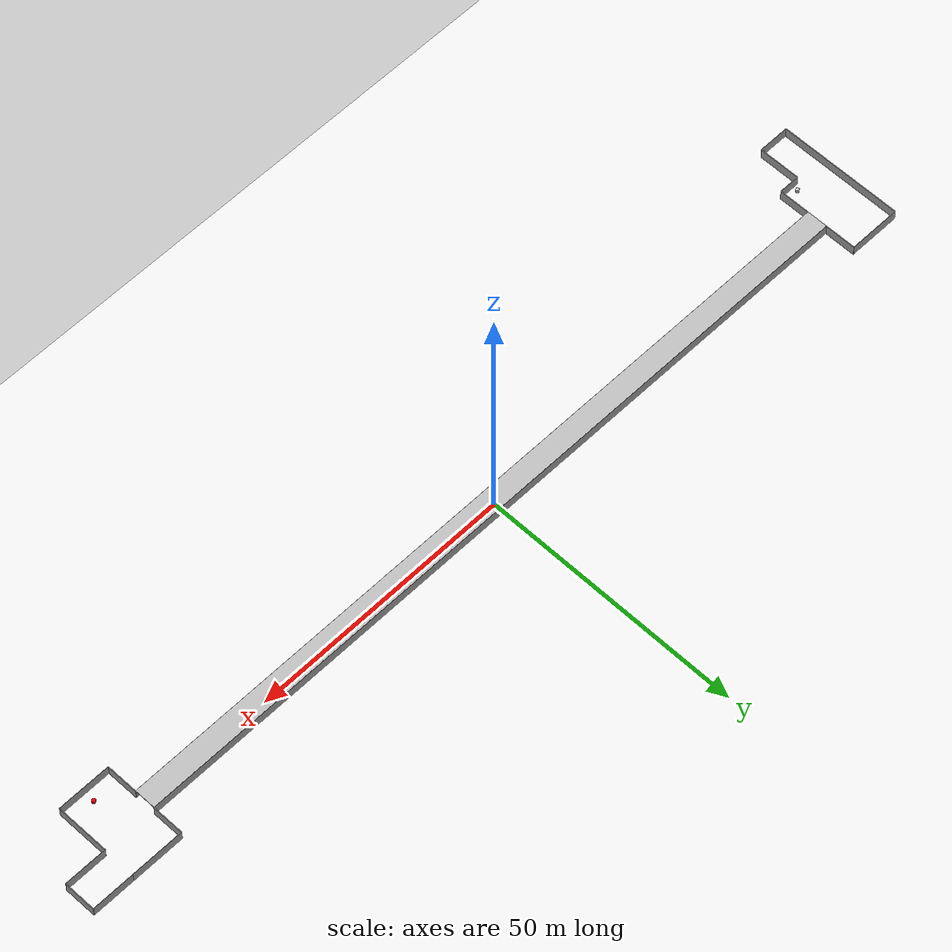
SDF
<?xml version="1.0" ?>
<sdf version="1.6" xmlns:xacro="http://www.ros.org/wiki/xacro">
  <world name="CASE">

    <include>
      <uri>model://sun</uri>
    </include>

    <model name="custom_ground">
      <static>true</static>
      <link name="ground_link">
        <collision name="collision">
          <geometry>
            <plane>
              <normal>0 0 1</normal>
              <size>100 100</size>
            </plane>
          </geometry>
        </collision>
        <visual name="visual">
          <geometry>
            <plane>
              <normal>0 0 1</normal>
              <size>500 500</size>
            </plane>
          </geometry>
          <material>
            <ambient>0.9 0.9 0.9 1</ambient>  <!-- Grey -->
            <diffuse>0.9 0.9 0.9 1</diffuse>
            <specular>0.2 0.2 0.2 1</specular>
          </material>
        </visual>
      </link>
    </model>

    <model name="left_wall_corridor">
      <static>true</static>
      <link name="link">
        <visual name="visual">
          <geometry>
            <box>
              <size>150 0.1 2</size>
            </box>
          </geometry>
          <material>
            <ambient>0.7 0.7 0.7 1</ambient>
          </material>
        </visual>
        <collision name="collision">
          <geometry>
            <box>
              <size>150 0.1 2</size>
            </box>
          </geometry>
        </collision>

        <pose>0 2 1 0 0 0</pose>
      </link>
    </model>

    <model name="right_wall_corridor">
      <static>true</static>
      <link name="link">
        <visual name="visual">
          <geometry>
            <box>
              <size>150 0.1 2</size>
            </box>
          </geometry>
          <material>
            <ambient>0.7 0.7 0.7 1</ambient>
          </material>
        </visual>
        <collision name="collision">
          <geometry>
            <box>
              <size>150 0.1 2</size>
            </box>
          </geometry>
        </collision>
        <pose>0 -2 1 0 0 0</pose>
      </link>
    </model>

    <model name="ceiling_corridor">
      <static>true</static>
      <link name="ceiling_corridor">
        <visual name="visual">
          <geometry>
            <box>
              <size>150 4 0.1</size>
            </box>
          </geometry>
          <material>
            <ambient>0.7 0.7 0.7 1</ambient>
          </material>
        </visual>
        <collision name="collision">
          <geometry>
            <box>
              <size>150 4 0.1</size>
            </box>
          </geometry>
        </collision>
        <pose>0 0 2 0 0 0</pose>
      </link>
    </model>

    <model name="left_wall_entrance">
      <static>true</static>
      <link name="link">
        <visual name="visual">
          <geometry>
            <box>
              <size>0.1 6 2</size>
            </box>
          </geometry>
          <material>
            <ambient>0.7 0.7 0.7 1</ambient>
          </material>
        </visual>
        <collision name="collision">
          <geometry>
            <box>
              <size>0.1 6 2</size>
            </box>
          </geometry>
        </collision>

        <pose>-75 5 1 0 0 0</pose>
      </link>
    </model>

    <model name="right_wall_entrance">
      <static>true</static>
      <link name="link">
        <visual name="visual">
          <geometry>
            <box>
              <size>0.1 6 2</size>
            </box>
          </geometry>
          <material>
            <ambient>0.7 0.7 0.7 1</ambient>
          </material>
        </visual>
        <collision name="collision">
          <geometry>
            <box>
              <size>0.1 6 2</size>
            </box>
          </geometry>
        </collision>

        <pose>-75 -5 1 0 0 0</pose>
      </link>
    </model>

    <model name="left_wall_exit">
      <static>true</static>
      <link name="link">
        <visual name="visual">
          <geometry>
            <box>
              <size>0.1 6 2</size>
            </box>
          </geometry>
          <material>
            <ambient>0.7 0.7 0.7 1</ambient>
          </material>
        </visual>
        <collision name="collision">
          <geometry>
            <box>
              <size>0.1 6 2</size>
            </box>
          </geometry>
        </collision>

        <pose>75 5 1 0 0 0</pose>
      </link>
    </model>

    <model name="right_wall_exit">
      <static>true</static>
      <link name="link">
        <visual name="visual">
          <geometry>
            <box>
              <size>0.1 6 2</size>
            </box>
          </geometry>
          <material>
            <ambient>0.7 0.7 0.7 1</ambient>
          </material>
        </visual>
        <collision name="collision">
          <geometry>
            <box>
              <size>0.1 6 2</size>
            </box>
          </geometry>
        </collision>

        <pose>75 -5 1 0 0 0</pose>
      </link>
    </model>

    <model name="front_wall_exit">
      <static>true</static>
      <link name="link">
        <visual name="visual">
          <geometry>
            <box>
              <size>0.1 10 2</size>
            </box>
          </geometry>
          <material>
            <ambient>0.7 0.7 0.7 1</ambient>
          </material>
        </visual>
        <collision name="collision">
          <geometry>
            <box>
              <size>0.1 10 2</size>
            </box>
          </geometry>
        </collision>
        <pose>85 -3 1 0 0 0</pose>
      </link>
    </model>

    <model name="front_wall_exit2">
      <static>true</static>
      <link name="link">
        <visual name="visual">
          <geometry>
            <box>
              <size>0.1 6 2</size>
            </box>
          </geometry>
          <material>
            <ambient>0.7 0.7 0.7 1</ambient>
          </material>
        </visual>
        <collision name="collision">
          <geometry>
            <box>
              <size>0.1 6 2</size>
            </box>
          </geometry>
        </collision>
        <pose>93 5 1 0 0 0</pose>
      </link>
    </model>

    <model name="front_wall_entrance">
      <static>true</static>
      <link name="link">
        <visual name="visual">
          <geometry>
            <box>
              <size>0.1 24 2</size>
            </box>
          </geometry>
          <material>
            <ambient>0.7 0.7 0.7 1</ambient>
          </material>
        </visual>
        <collision name="collision">
          <geometry>
            <box>
              <size>0.1 24 2</size>
            </box>
          </geometry>
        </collision>
        <pose>-85 -4 1 0 0 0</pose>
      </link>
    </model>

    <model name="front_wall_entrance2">
      <static>true</static>
      <link name="link">
        <visual name="visual">
          <geometry>
            <box>
              <size>0.1 8 2</size>
            </box>
          </geometry>
          <material>
            <ambient>0.7 0.7 0.7 1</ambient>
          </material>
        </visual>
        <collision name="collision">
          <geometry>
            <box>
              <size>0.1 8 2</size>
            </box>
          </geometry>
        </collision>
        <pose>-79 -12 1 0 0 0</pose>
      </link>
    </model>

    <model name="left_wall_entrance_room">
      <static>true</static>
      <link name="link">
        <visual name="visual">
          <geometry>
            <box>
              <size>10 0.1 2</size>
            </box>
          </geometry>
          <material>
            <ambient>0.7 0.7 0.7 1</ambient>
          </material>
        </visual>
        <collision name="collision">
          <geometry>
            <box>
              <size>10 0.1 2</size>
            </box>
          </geometry>
        </collision>

        <pose>-80 8 1 0 0 0</pose>
      </link>
    </model>

    <model name="right_wall_entrance_room">
      <static>true</static>
      <link name="link">
        <visual name="visual">
          <geometry>
            <box>
              <size>4 0.1 2</size>
            </box>
          </geometry>
          <material>
            <ambient>0.7 0.7 0.7 1</ambient>
          </material>
        </visual>
        <collision name="collision">
          <geometry>
            <box>
              <size>4 0.1 2</size>
            </box>
          </geometry>
        </collision>

        <pose>-77 -8 1 0 0 0</pose>
      </link>
    </model>

    <model name="right_wall_entrance_room2">
      <static>true</static>
      <link name="link">
        <visual name="visual">
          <geometry>
            <box>
              <size>6 0.1 2</size>
            </box>
          </geometry>
          <material>
            <ambient>0.7 0.7 0.7 1</ambient>
          </material>
        </visual>
        <collision name="collision">
          <geometry>
            <box>
              <size>6 0.1 2</size>
            </box>
          </geometry>
        </collision>

        <pose>-82 -16 1 0 0 0</pose>
      </link>
    </model>

    <model name="left_wall_exit_room">
      <static>true</static>
      <link name="link">
        <visual name="visual">
          <geometry>
            <box>
              <size>10 0.1 2</size>
            </box>
          </geometry>
          <material>
            <ambient>0.7 0.7 0.7 1</ambient>
          </material>
        </visual>
        <collision name="collision">
          <geometry>
            <box>
              <size>10 0.1 2</size>
            </box>
          </geometry>
        </collision>
        <pose>80 8 1 0 0 0</pose>
      </link>
    </model>

    <model name="left_wall_exit_room2">
      <static>true</static>
      <link name="link">
        <visual name="visual">
          <geometry>
            <box>
              <size>8 0.1 2</size>
            </box>
          </geometry>
          <material>
            <ambient>0.7 0.7 0.7 1</ambient>
          </material>
        </visual>
        <collision name="collision">
          <geometry>
            <box>
              <size>8 0.1 2</size>
            </box>
          </geometry>
        </collision>
        <pose>89 8 1 0 0 0</pose>
      </link>
    </model>

    <model name="right_wall_exit_room">
      <static>true</static>
      <link name="link">
        <visual name="visual">
          <geometry>
            <box>
              <size>10 0.1 2</size>
            </box>
          </geometry>
          <material>
            <ambient>0.7 0.7 0.7 1</ambient>
          </material>
        </visual>
        <collision name="collision">
          <geometry>
            <box>
              <size>10 0.1 2</size>
            </box>
          </geometry>
        </collision>
        <pose>80 -8 1 0 0 0</pose>
      </link>
    </model>

    <model name="right_wall_exit_room2">
      <static>true</static>
      <link name="link">
        <visual name="visual">
          <geometry>
            <box>
              <size>8 0.1 2</size>
            </box>
          </geometry>
          <material>
            <ambient>0.7 0.7 0.7 1</ambient>
          </material>
        </visual>
        <collision name="collision">
          <geometry>
            <box>
              <size>8 0.1 2</size>
            </box>
          </geometry>
        </collision>
        <pose>89 2 1 0 0 0</pose>
      </link>
    </model>

    <model name='cube_exit_1'>
      <static>true</static>
      <link name="link">
        <visual name="visual">
          <geometry>
            <box>
              <size>0.6 0.6 0.6</size>
            </box>
          </geometry>
          <material>
            <ambient>1 0 0 1</ambient>
          </material>
        </visual>
        <collision name="collision">
          <geometry>
            <box>
              <size>0.6 0.6 0.6</size>
            </box>
          </geometry>
        </collision>
        <pose>80 -6 0.3 0 0 0.5235</pose>
      </link>
    </model>

    <model name='cube_entrance_1'>
      <static>true</static>
      <link name="link">
        <visual name="visual">
          <geometry>
            <box>
              <size>0.6 0.6 0.6</size>
            </box>
          </geometry>
          <material>
            <ambient>0.7 0.7 0.7 1</ambient>
          </material>
        </visual>
        <collision name="collision">
          <geometry>
            <box>
              <size>0.6 0.6 0.6</size>
            </box>
          </geometry>
        </collision>
        <pose>-78 -7 0.3 0 0 0.5235</pose>
      </link>
    </model>

  </world>
</sdf>
